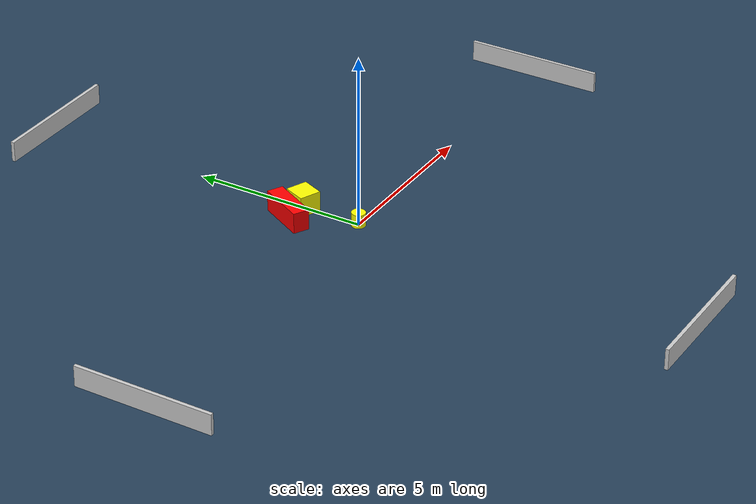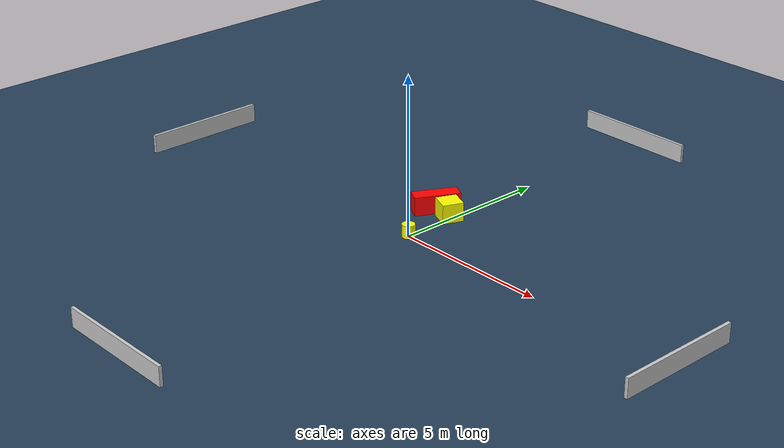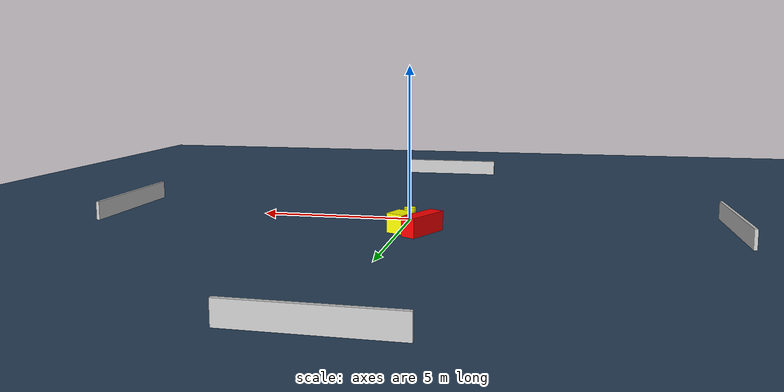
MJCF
<?xml version="1.0" ?>
<mujoco model="generated_environment">
  <option timestep="0.01" integrator="RK4" cone="elliptic"/>
  <default>
    <geom density="1"/>
  </default>
  <asset>
    <texture builtin="gradient" height="3072" name="skybox" rgb1="0.3 0.5 0.7" rgb2="0 0 0" type="skybox" width="512"/>
    <texture builtin="checker" height="300" name="groundplane" rgb1="0.2 0.3 0.4" rgb2="0.1 0.2 0.3" type="2d" width="300"/>
    <material name="groundplane" reflectance="0.2" texrepeat="5 5" texture="groundplane"/>
  </asset>
  <worldbody>
    <light dir="0 0 -1" directional="true" pos="0 0 1.5"/>
    <geom condim="3" friction="0.5 0.005 0.001" material="groundplane" name="floor" pos="0 0 0" size="0 0 0.05" type="plane"/>
    <body name="walls">
      <geom name="wall_1" condim="4" pos="-10.0 0.0 0.3" rgba="0.800000011920929 0.800000011920929 0.800000011920929 1.0" size="0.05 2.0 0.3" type="box"/>
      <geom name="wall_2" condim="4" pos="10.0 0.0 0.3" rgba="0.800000011920929 0.800000011920929 0.800000011920929 1.0" size="0.05 2.0 0.3" type="box"/>
      <geom name="wall_3" condim="4" pos="0.0 -10.0 0.3" rgba="0.800000011920929 0.800000011920929 0.800000011920929 1.0" size="2.0 0.05 0.3" type="box"/>
      <geom name="wall_4" condim="4" pos="0.0 10.0 0.3" rgba="0.800000011920929 0.800000011920929 0.800000011920929 1.0" size="2.0 0.05 0.3" type="box"/>
    </body>
    <body name="robot">
      <joint name="joint_x" type="slide" pos="0 0 0" axis="1 0 0"/>
      <joint name="joint_y" type="slide" pos="0 0 0" axis="0 1 0"/>
      <geom name="robot" type="cylinder" pos="0.0 0.0 0.2" size="0.2 0.2 0.0" mass="5.0" friction="1.0 0.005 0.0001" condim="4" rgba="1.0 1.0 0.0 1.0"/>
    </body>
    <body name="obstacle_1_movable">
      <geom name="obstacle_1_movable" condim="4" pos="-0.059654526451137516 1.6963742818385936 0.3" euler="0 0 247.31321735260414" friction="0.0 0.005 0.001" rgba="1.0 1.0 0.0 1.0" size="0.3291298323778975 0.3157483068786297 0.3" type="box" mass="0.1"/>
      <joint type="free"/>
    </body>
    <body name="obstacle_2_static">
      <geom name="obstacle_2_static" condim="4" pos="-0.7228759610147119 1.7638483433805114 0.3" euler="0 0 331.8555901118389" friction="0.0 0.005 0.001" rgba="1.0 0.0 0.0 1.0" size="0.23486068827687873 0.7150481260556607 0.3" type="box"/>
    </body>
  </worldbody>
  <actuator>
    <motor name="actuator_x" joint="joint_x" gear="1" ctrlrange="-1 1"/>
    <motor name="actuator_y" joint="joint_y" gear="1" ctrlrange="-1 1"/>
  </actuator>
</mujoco>
